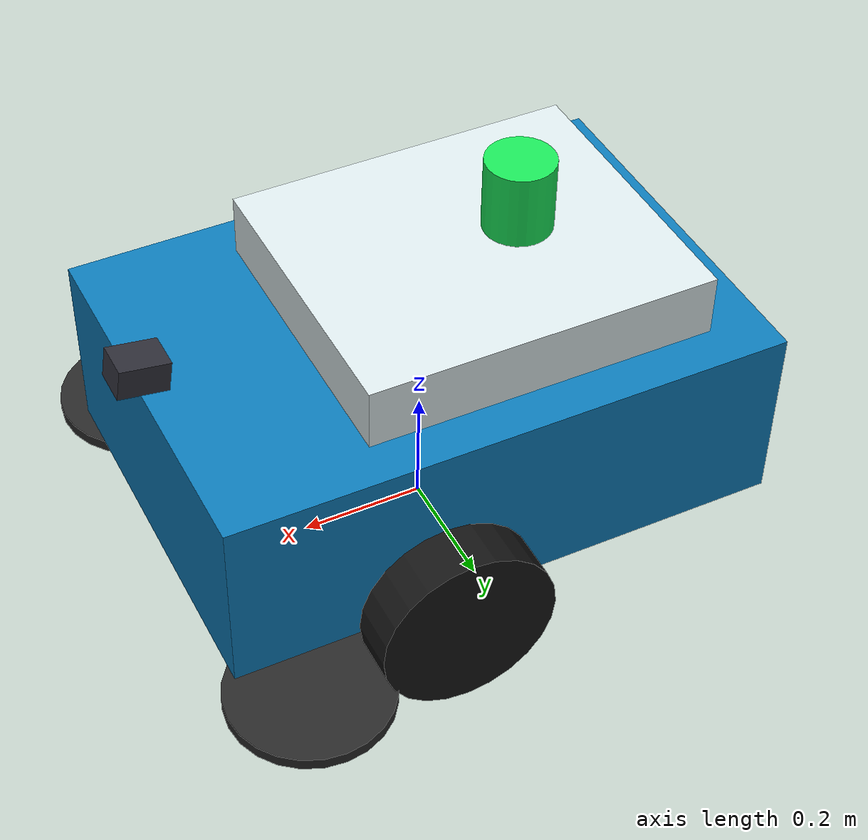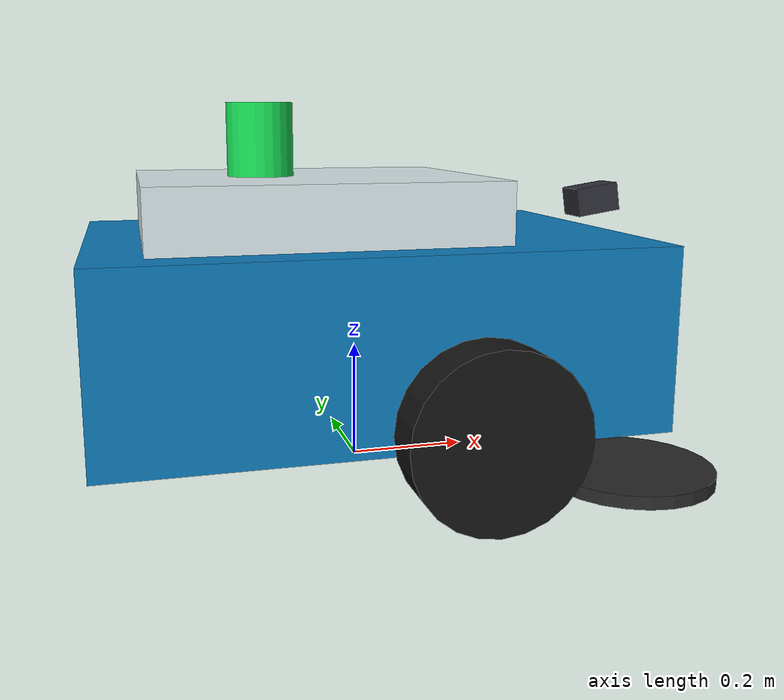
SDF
<?xml version="1.0"?>
<sdf version="1.8">
  <model name="smartclean_robot">
    <static>false</static>
    <self_collide>false</self_collide>

    <!-- Ground-level origin frame: DiffDrive publishes odom -> base_footprint,
         robot_state_publisher owns base_footprint -> base_link. -->
    <link name="base_footprint">
      <pose>0 0 0 0 0 0</pose>
      <inertial>
        <mass>0.01</mass>
        <inertia>
          <ixx>0.00001</ixx>
          <iyy>0.00001</iyy>
          <izz>0.00001</izz>
        </inertia>
      </inertial>
      <collision name="footprint_collision">
        <!-- 契约要求每个 link 有碰撞体；放在车体内部（与 base_link 重叠、
             self_collide=false），绝不接触地面，避免抬高整车让车轮悬空。 -->
        <pose>0 0 0.25 0 0 0</pose>
        <geometry>
          <box>
            <size>0.02 0.02 0.01</size>
          </box>
        </geometry>
      </collision>
    </link>

    <joint name="base_footprint_joint" type="fixed">
      <parent>base_footprint</parent>
      <child>base_link</child>
      <pose>0 0 0.25 0 0 0</pose>
    </joint>

    <!-- The base link represents the main cleaning-vehicle body. -->
    <link name="base_link">
      <pose>0 0 0.25 0 0 0</pose>
      <inertial>
        <mass>45.0</mass>
        <inertia>
          <ixx>1.779</ixx>
          <ixy>0.0</ixy>
          <ixz>0.0</ixz>
          <iyy>3.047</iyy>
          <iyz>0.0</iyz>
          <izz>4.151</izz>
        </inertia>
      </inertial>
      <collision name="body_collision">
        <geometry>
          <box>
            <size>0.90 0.62 0.30</size>
          </box>
        </geometry>
      </collision>
      <visual name="body_visual">
        <geometry>
          <box>
            <size>0.90 0.62 0.30</size>
          </box>
        </geometry>
        <material>
          <ambient>0.04 0.32 0.52 1</ambient>
          <diffuse>0.05 0.48 0.72 1</diffuse>
          <specular>0.10 0.10 0.10 1</specular>
        </material>
      </visual>
      <visual name="top_cover_visual">
        <pose>-0.08 0 0.20 0 0 0</pose>
        <geometry>
          <box>
            <size>0.56 0.48 0.10</size>
          </box>
        </geometry>
        <material>
          <ambient>0.72 0.78 0.80 1</ambient>
          <diffuse>0.86 0.91 0.92 1</diffuse>
        </material>
      </visual>
      <visual name="status_beacon_visual">
        <pose>-0.16 0 0.31 0 0 0</pose>
        <geometry>
          <cylinder>
            <radius>0.055</radius>
            <length>0.12</length>
          </cylinder>
        </geometry>
        <material>
          <ambient>0.08 0.62 0.25 1</ambient>
          <diffuse>0.10 0.90 0.35 1</diffuse>
          <emissive>0.02 0.22 0.08 1</emissive>
        </material>
      </visual>
      <visual name="left_brush_visual">
        <pose>0.35 0.35 -0.19 0 0 0</pose>
        <geometry>
          <cylinder>
            <radius>0.13</radius>
            <length>0.02</length>
          </cylinder>
        </geometry>
        <material>
          <ambient>0.08 0.08 0.08 1</ambient>
          <diffuse>0.16 0.16 0.16 1</diffuse>
        </material>
      </visual>
      <visual name="right_brush_visual">
        <pose>0.35 -0.35 -0.19 0 0 0</pose>
        <geometry>
          <cylinder>
            <radius>0.13</radius>
            <length>0.02</length>
          </cylinder>
        </geometry>
        <material>
          <ambient>0.08 0.08 0.08 1</ambient>
          <diffuse>0.16 0.16 0.16 1</diffuse>
        </material>
      </visual>
    </link>

    <link name="left_wheel_link">
      <pose>0.12 0.37 0.14 0 0 0</pose>
      <inertial>
        <mass>2.5</mass>
        <inertia>
          <ixx>0.01358</ixx>
          <ixy>0.0</ixy>
          <ixz>0.0</ixz>
          <iyy>0.02450</iyy>
          <iyz>0.0</iyz>
          <izz>0.01358</izz>
        </inertia>
      </inertial>
      <collision name="left_wheel_collision">
        <pose>0 0 0 1.57079632679 0 0</pose>
        <geometry>
          <cylinder>
            <radius>0.14</radius>
            <length>0.08</length>
          </cylinder>
        </geometry>
        <surface>
          <friction>
            <ode>
              <mu>1.2</mu>
              <mu2>0.7</mu2>
            </ode>
          </friction>
        </surface>
      </collision>
      <visual name="left_wheel_visual">
        <pose>0 0 0 1.57079632679 0 0</pose>
        <geometry>
          <cylinder>
            <radius>0.14</radius>
            <length>0.08</length>
          </cylinder>
        </geometry>
        <material>
          <ambient>0.035 0.035 0.035 1</ambient>
          <diffuse>0.08 0.08 0.08 1</diffuse>
        </material>
      </visual>
    </link>

    <link name="right_wheel_link">
      <pose>0.12 -0.37 0.14 0 0 0</pose>
      <inertial>
        <mass>2.5</mass>
        <inertia>
          <ixx>0.01358</ixx>
          <ixy>0.0</ixy>
          <ixz>0.0</ixz>
          <iyy>0.02450</iyy>
          <iyz>0.0</iyz>
          <izz>0.01358</izz>
        </inertia>
      </inertial>
      <collision name="right_wheel_collision">
        <pose>0 0 0 1.57079632679 0 0</pose>
        <geometry>
          <cylinder>
            <radius>0.14</radius>
            <length>0.08</length>
          </cylinder>
        </geometry>
        <surface>
          <friction>
            <ode>
              <mu>1.2</mu>
              <mu2>0.7</mu2>
            </ode>
          </friction>
        </surface>
      </collision>
      <visual name="right_wheel_visual">
        <pose>0 0 0 1.57079632679 0 0</pose>
        <geometry>
          <cylinder>
            <radius>0.14</radius>
            <length>0.08</length>
          </cylinder>
        </geometry>
        <material>
          <ambient>0.035 0.035 0.035 1</ambient>
          <diffuse>0.08 0.08 0.08 1</diffuse>
        </material>
      </visual>
    </link>

    <link name="caster_link">
      <pose>-0.34 0 0.075 0 0 0</pose>
      <inertial>
        <mass>0.7</mass>
        <inertia>
          <ixx>0.001575</ixx>
          <ixy>0.0</ixy>
          <ixz>0.0</ixz>
          <iyy>0.001575</iyy>
          <iyz>0.0</iyz>
          <izz>0.001575</izz>
        </inertia>
      </inertial>
      <collision name="caster_collision">
        <geometry>
          <sphere>
            <radius>0.075</radius>
          </sphere>
        </geometry>
        <surface>
          <friction>
            <ode>
              <mu>0.3</mu>
              <mu2>0.3</mu2>
            </ode>
          </friction>
        </surface>
      </collision>
      <visual name="caster_visual">
        <geometry>
          <sphere>
            <radius>0.075</radius>
          </sphere>
        </geometry>
        <material>
          <ambient>0.08 0.08 0.08 1</ambient>
          <diffuse>0.14 0.14 0.14 1</diffuse>
        </material>
      </visual>
    </link>

    <link name="camera_link">
      <pose>0.45 0 0.45 0 -0.15 0</pose>
      <inertial>
        <mass>0.25</mass>
        <inertia>
          <ixx>0.0002</ixx>
          <ixy>0.0</ixy>
          <ixz>0.0</ixz>
          <iyy>0.0002</iyy>
          <iyz>0.0</iyz>
          <izz>0.0002</izz>
        </inertia>
      </inertial>
      <collision name="camera_collision">
        <geometry>
          <box>
            <size>0.08 0.06 0.05</size>
          </box>
        </geometry>
      </collision>
      <visual name="camera_visual">
        <geometry>
          <box>
            <size>0.08 0.06 0.05</size>
          </box>
        </geometry>
        <material>
          <ambient>0.12 0.12 0.14 1</ambient>
          <diffuse>0.18 0.18 0.22 1</diffuse>
        </material>
      </visual>
      <sensor name="rgbd_camera" type="rgbd_camera">
        <pose>0 0 0 0 0 0</pose>
        <topic>/smartclean/camera</topic>
        <update_rate>10</update_rate>
        <camera>
          <horizontal_fov>1.0471975512</horizontal_fov>
          <image>
            <width>640</width>
            <height>480</height>
            <format>R8G8B8</format>
          </image>
          <depth_camera>
            <clip>
              <near>0.05</near>
              <far>20</far>
            </clip>
          </depth_camera>
          <clip>
            <near>0.05</near>
            <far>100</far>
          </clip>
        </camera>
        <always_on>1</always_on>
        <visualize>0</visualize>
      </sensor>

    </link>

    <joint name="left_wheel_joint" type="revolute">
      <parent>base_link</parent>
      <child>left_wheel_link</child>
      <axis>
        <xyz expressed_in="__model__">0 1 0</xyz>
        <limit>
          <lower>-1.0e16</lower>
          <upper>1.0e16</upper>
          <effort>80.0</effort>
          <velocity>12.0</velocity>
        </limit>
        <dynamics>
          <damping>0.05</damping>
          <friction>0.02</friction>
        </dynamics>
      </axis>
    </joint>

    <joint name="right_wheel_joint" type="revolute">
      <parent>base_link</parent>
      <child>right_wheel_link</child>
      <axis>
        <xyz expressed_in="__model__">0 1 0</xyz>
        <limit>
          <lower>-1.0e16</lower>
          <upper>1.0e16</upper>
          <effort>80.0</effort>
          <velocity>12.0</velocity>
        </limit>
        <dynamics>
          <damping>0.05</damping>
          <friction>0.02</friction>
        </dynamics>
      </axis>
    </joint>

    <joint name="caster_joint" type="ball">
      <parent>base_link</parent>
      <child>caster_link</child>
    </joint>

    <joint name="camera_joint" type="fixed">
      <parent>base_link</parent>
      <child>camera_link</child>
    </joint>
    <link name="lidar_link">
      <pose>0.05 0 0.47 0 0 0</pose>
      <inertial>
        <mass>0.15</mass>
        <inertia>
          <ixx>0.0001</ixx>
          <iyy>0.0001</iyy>
          <izz>0.0001</izz>
        </inertia>
      </inertial>
      <collision name="lidar_collision">
        <geometry>
          <cylinder>
            <radius>0.06</radius>
            <length>0.04</length>
          </cylinder>
        </geometry>
      </collision>
      <visual name="lidar_visual">
        <geometry>
          <cylinder>
            <radius>0.06</radius>
            <length>0.04</length>
          </cylinder>
        </geometry>
        <material>
          <ambient>0.55 0.10 0.10 1</ambient>
          <diffuse>0.55 0.10 0.10 1</diffuse>
        </material>
      </visual>
      <sensor name="lidar" type="gpu_lidar">
        <pose>0 0 0 0 0 0</pose>
        <topic>/smartclean/lidar/scan</topic>
        <update_rate>10</update_rate>
        <ray>
          <scan>
            <horizontal>
              <samples>360</samples>
              <resolution>1</resolution>
              <min_angle>-3.14159265359</min_angle>
              <max_angle>3.14159265359</max_angle>
            </horizontal>
          </scan>
          <range>
            <min>0.1</min>
            <max>12</max>
            <resolution>0.01</resolution>
          </range>
        </ray>
        <always_on>1</always_on>
        <visualize>0</visualize>
      </sensor>
    </link>

    <joint name="lidar_joint" type="fixed">
      <parent>base_link</parent>
      <child>lidar_link</child>
    </joint>

    <plugin
      filename="ignition-gazebo-diff-drive-system"
      name="gz::sim::systems::DiffDrive">
      <left_joint>left_wheel_joint</left_joint>
      <right_joint>right_wheel_joint</right_joint>
      <wheel_separation>0.74</wheel_separation>
      <wheel_radius>0.14</wheel_radius>
      <topic>/smartclean/safe_cmd_vel</topic>
      <odom_topic>/smartclean/odom</odom_topic>
      <tf_topic>/smartclean/tf</tf_topic>
      <frame_id>odom</frame_id>
      <child_frame_id>base_footprint</child_frame_id>
      <odom_publish_frequency>30</odom_publish_frequency>
      <max_linear_velocity>1.2</max_linear_velocity>
      <min_linear_velocity>-0.5</min_linear_velocity>
      <max_angular_velocity>1.5</max_angular_velocity>
      <min_angular_velocity>-1.5</min_angular_velocity>
      <max_linear_acceleration>0.8</max_linear_acceleration>
      <min_linear_acceleration>-1.0</min_linear_acceleration>
      <max_angular_acceleration>2.0</max_angular_acceleration>
      <min_angular_acceleration>-2.0</min_angular_acceleration>
    </plugin>
  </model>
</sdf>
